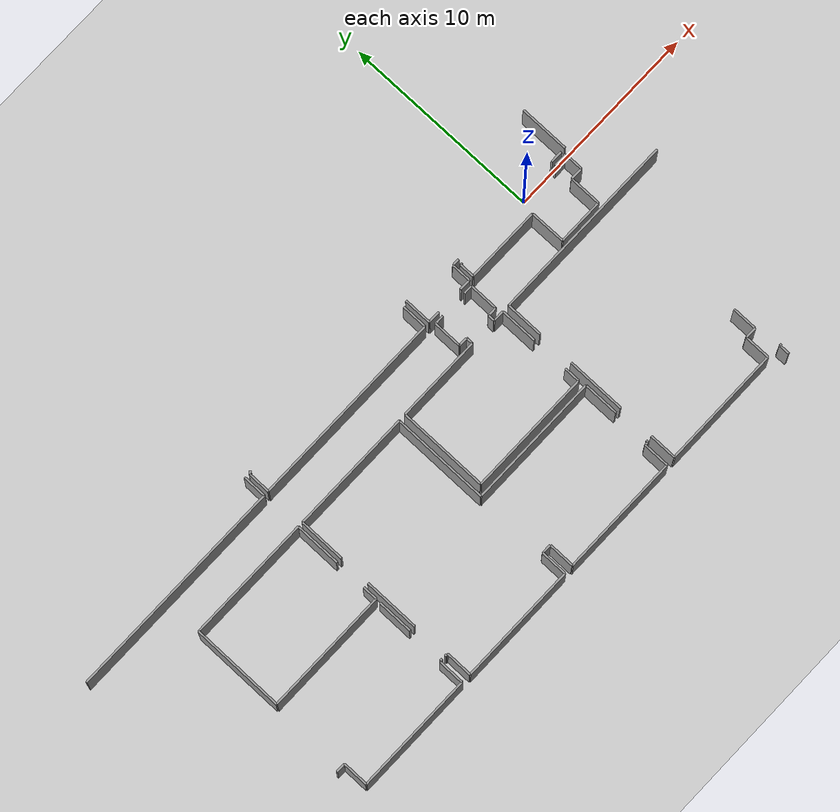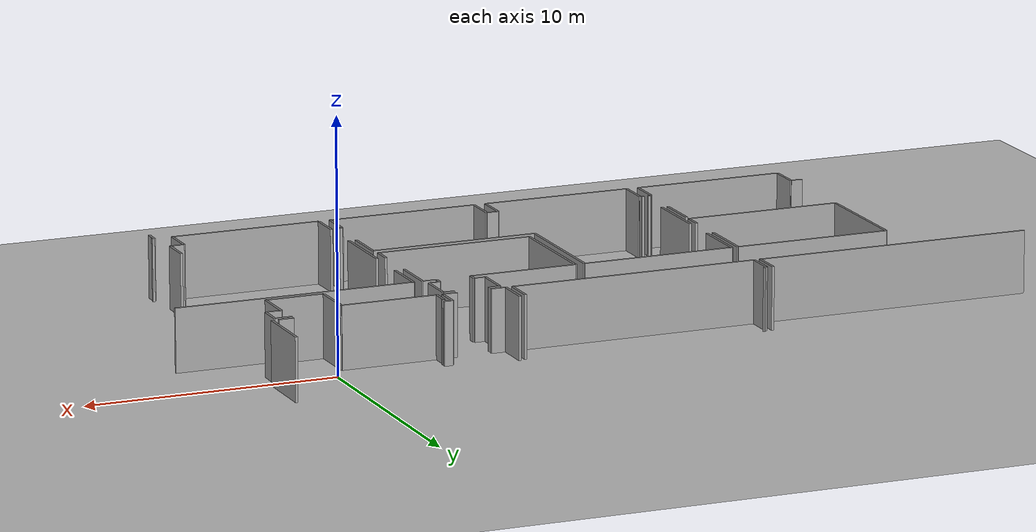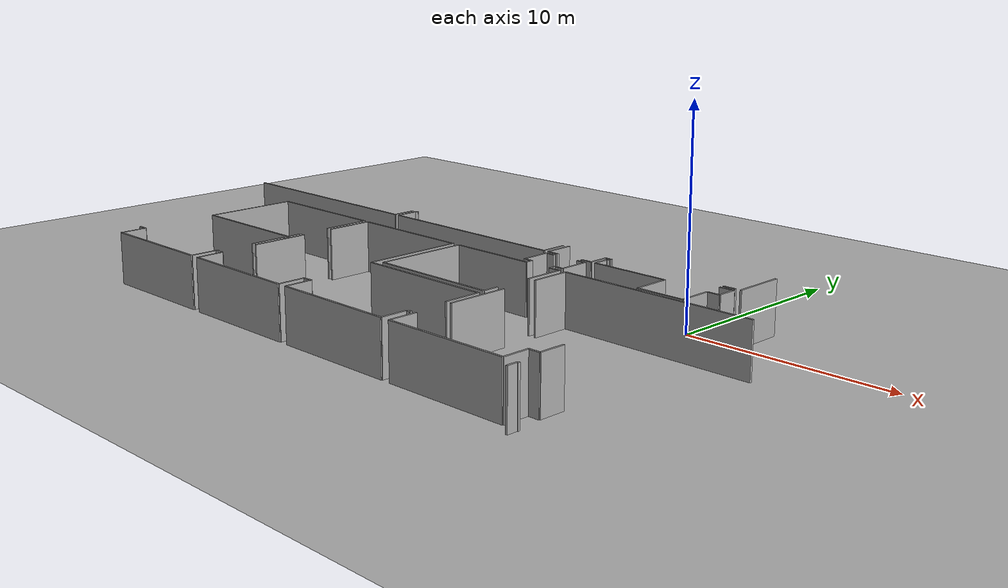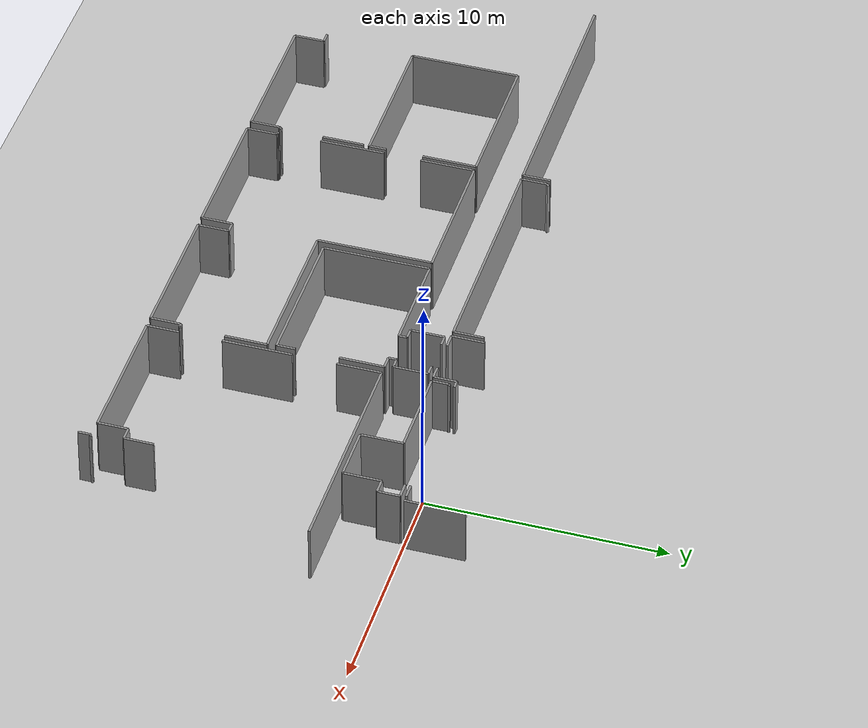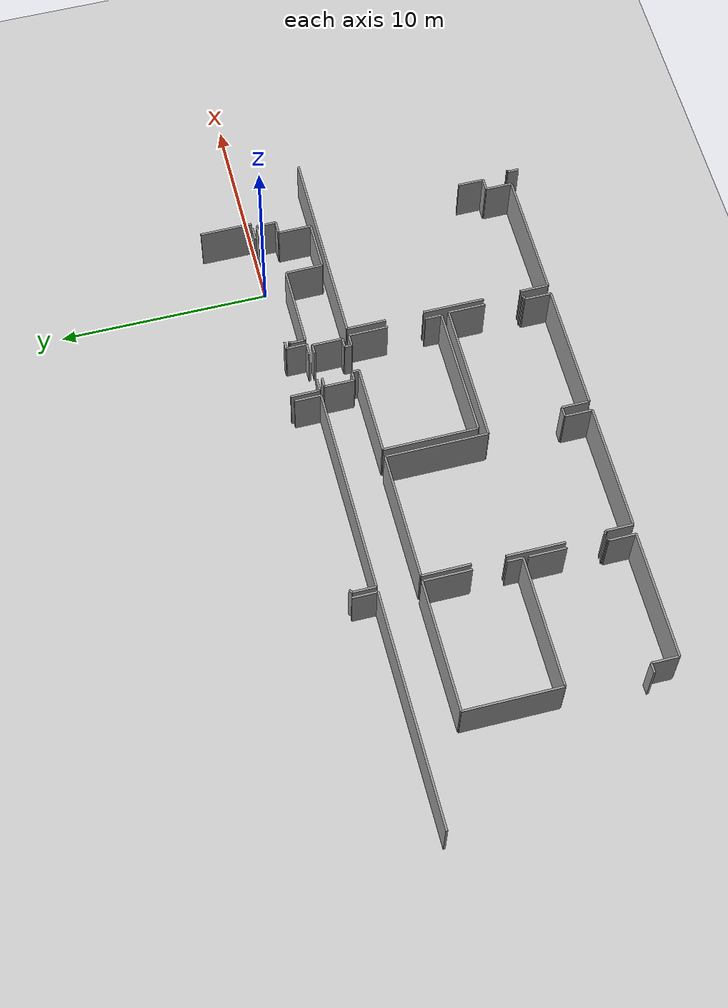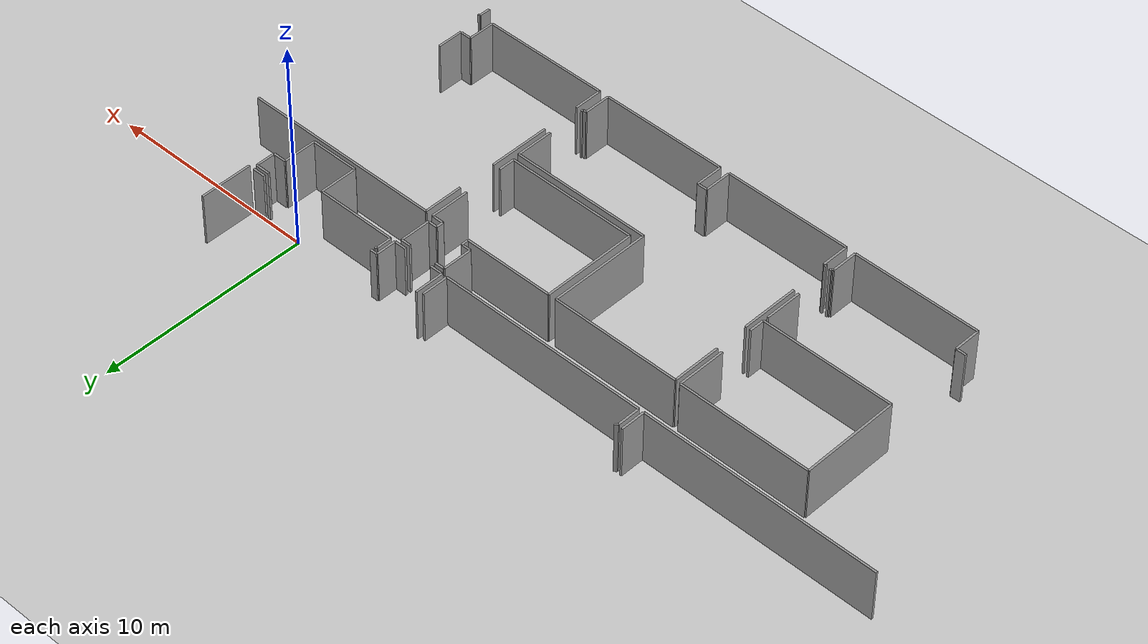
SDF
<sdf version="1.6">
 <world name="default">
  <model name="ground_plane">
   <static>1</static>
   <link name="link">
    <collision name="collision">
     <geometry><plane><normal>0 0 1</normal><size>100 100</size></plane></geometry>
     <surface><friction><ode><mu>100</mu><mu2>50</mu2></ode></friction></surface>
    </collision>
    <visual name="visual">
     <cast_shadows>0</cast_shadows>
     <geometry><plane><normal>0 0 1</normal><size>100 100</size></plane></geometry>
     <material>
      <script><uri>file://media/materials/scripts/gazebo.material</uri><name>Gazebo/Grey</name></script>
     </material>
    </visual>
   </link>
  </model>
  <model name="0510040943_A-40">
   <static>1</static>
   <link name="Wall_24">
    <collision name="Wall_24_Collision">
     <geometry><box><size>0.604226924443 0.1 2.5</size></box></geometry>
     <pose>0.302113462222 0 1.25 0 0 0</pose>
    </collision>
    <visual name="Wall_24_Visual">
     <pose>0.302113462222 0 1.25 0 0 0</pose>
     <geometry><box><size>0.604226924443 0.1 2.5</size></box></geometry>
     <material>
      <script><uri>file://media/materials/scripts/gazebo.material</uri><name>Gazebo/Grey</name></script>
      <ambient>1 1 1 1</ambient>
     </material>
    </visual>
    <pose>58.5133455117 -13.3639062262 0 0 0 3.14159265359</pose>
   </link>
   <link name="Wall_25">
    <collision name="Wall_25_Collision">
     <geometry><box><size>0.345562490486 0.1 2.5</size></box></geometry>
     <pose>0.172781245243 0 1.25 0 0 0</pose>
    </collision>
    <visual name="Wall_25_Visual">
     <pose>0.172781245243 0 1.25 0 0 0</pose>
     <geometry><box><size>0.345562490486 0.1 2.5</size></box></geometry>
     <material>
      <script><uri>file://media/materials/scripts/gazebo.material</uri><name>Gazebo/Grey</name></script>
      <ambient>1 1 1 1</ambient>
     </material>
    </visual>
    <pose>51.9345917694 -13.3639062262 0 0 0 3.14159265359</pose>
   </link>
   <link name="Wall_26">
    <collision name="Wall_26_Collision">
     <geometry><box><size>0.968564469478 0.1 2.5</size></box></geometry>
     <pose>0.484282234739 0 1.25 0 0 0</pose>
    </collision>
    <visual name="Wall_26_Visual">
     <pose>0.484282234739 0 1.25 0 0 0</pose>
     <geometry><box><size>0.968564469478 0.1 2.5</size></box></geometry>
     <material>
      <script><uri>file://media/materials/scripts/gazebo.material</uri><name>Gazebo/Grey</name></script>
      <ambient>1 1 1 1</ambient>
     </material>
    </visual>
    <pose>51.5890292789 -13.3639062262 0 0 0 -1.57079632679</pose>
   </link>
   <link name="Wall_27">
    <collision name="Wall_27_Collision">
     <geometry><box><size>0.570355711169 0.1 2.5</size></box></geometry>
     <pose>0.285177855584 0 1.25 0 0 0</pose>
    </collision>
    <visual name="Wall_27_Visual">
     <pose>0.285177855584 0 1.25 0 0 0</pose>
     <geometry><box><size>0.570355711169 0.1 2.5</size></box></geometry>
     <material>
      <script><uri>file://media/materials/scripts/gazebo.material</uri><name>Gazebo/Grey</name></script>
      <ambient>1 1 1 1</ambient>
     </material>
    </visual>
    <pose>51.5890292789 -14.3324706957 0 0 0 3.14159265359</pose>
   </link>
   <link name="Wall_28">
    <collision name="Wall_28_Collision">
     <geometry><box><size>0.60549550921 0.1 2.5</size></box></geometry>
     <pose>0.302747754605 0 1.25 0 0 0</pose>
    </collision>
    <visual name="Wall_28_Visual">
     <pose>0.302747754605 0 1.25 0 0 0</pose>
     <geometry><box><size>0.60549550921 0.1 2.5</size></box></geometry>
     <material>
      <script><uri>file://media/materials/scripts/gazebo.material</uri><name>Gazebo/Grey</name></script>
      <ambient>1 1 1 1</ambient>
     </material>
    </visual>
    <pose>49.6404830771 -14.3324706957 0 0 0 3.14159265359</pose>
   </link>
   <link name="Wall_29">
    <collision name="Wall_29_Collision">
     <geometry><box><size>1.38275739585 0.1 2.5</size></box></geometry>
     <pose>0.691378697925 0 1.25 0 0 0</pose>
    </collision>
    <visual name="Wall_29_Visual">
     <pose>0.691378697925 0 1.25 0 0 0</pose>
     <geometry><box><size>1.38275739585 0.1 2.5</size></box></geometry>
     <material>
      <script><uri>file://media/materials/scripts/gazebo.material</uri><name>Gazebo/Grey</name></script>
      <ambient>1 1 1 1</ambient>
     </material>
    </visual>
    <pose>49.0349875679 -14.3324706957 0 0 0 1.57079632679</pose>
   </link>
   <link name="Wall_34">
    <collision name="Wall_34_Collision">
     <geometry><box><size>1.17838838991 0.1 2.5</size></box></geometry>
     <pose>0.589194194956 0 1.25 0 0 0</pose>
    </collision>
    <visual name="Wall_34_Visual">
     <pose>0.589194194956 0 1.25 0 0 0</pose>
     <geometry><box><size>1.17838838991 0.1 2.5</size></box></geometry>
     <material>
      <script><uri>file://media/materials/scripts/gazebo.material</uri><name>Gazebo/Grey</name></script>
      <ambient>1 1 1 1</ambient>
     </material>
    </visual>
    <pose>38.5742375806 -13.1614400974 0 0 0 -1.57079632679</pose>
   </link>
   <link name="Wall_35">
    <collision name="Wall_35_Collision">
     <geometry><box><size>11.1474349216 0.1 2.5</size></box></geometry>
     <pose>5.5737174608 0 1.25 0 0 0</pose>
    </collision>
    <visual name="Wall_35_Visual">
     <pose>5.5737174608 0 1.25 0 0 0</pose>
     <geometry><box><size>11.1474349216 0.1 2.5</size></box></geometry>
     <material>
      <script><uri>file://media/materials/scripts/gazebo.material</uri><name>Gazebo/Grey</name></script>
      <ambient>1 1 1 1</ambient>
     </material>
    </visual>
    <pose>38.5742375806 -14.3398284873 0 0 0 3.14159265359</pose>
   </link>
   <link name="Wall_178">
    <collision name="Wall_178_Collision">
     <geometry><box><size>1.77754097529 0.1 2.5</size></box></geometry>
     <pose>0.888770487644 0 1.25 0 0 0</pose>
    </collision>
    <visual name="Wall_178_Visual">
     <pose>0.888770487644 0 1.25 0 0 0</pose>
     <geometry><box><size>1.77754097529 0.1 2.5</size></box></geometry>
     <material>
      <script><uri>file://media/materials/scripts/gazebo.material</uri><name>Gazebo/Grey</name></script>
      <ambient>1 1 1 1</ambient>
     </material>
    </visual>
    <pose>38.5866697113 -21.2040138022 0 0 0 -1.57079632679</pose>
   </link>
   <link name="Wall_179">
    <collision name="Wall_179_Collision">
     <geometry><box><size>0.0942558481758 0.1 2.5</size></box></geometry>
     <pose>0.0471279240879 0 1.25 0 0 0</pose>
    </collision>
    <visual name="Wall_179_Visual">
     <pose>0.0471279240879 0 1.25 0 0 0</pose>
     <geometry><box><size>0.0942558481758 0.1 2.5</size></box></geometry>
     <material>
      <script><uri>file://media/materials/scripts/gazebo.material</uri><name>Gazebo/Grey</name></script>
      <ambient>1 1 1 1</ambient>
     </material>
    </visual>
    <pose>38.5866697113 -24.7724158928 0 0 0 -1.57079632679</pose>
   </link>
   <link name="Wall_180">
    <collision name="Wall_180_Collision">
     <geometry><box><size>0.10250164916 0.1 2.5</size></box></geometry>
     <pose>0.0512508245801 0 1.25 0 0 0</pose>
    </collision>
    <visual name="Wall_180_Visual">
     <pose>0.0512508245801 0 1.25 0 0 0</pose>
     <geometry><box><size>0.10250164916 0.1 2.5</size></box></geometry>
     <material>
      <script><uri>file://media/materials/scripts/gazebo.material</uri><name>Gazebo/Grey</name></script>
      <ambient>1 1 1 1</ambient>
     </material>
    </visual>
    <pose>38.5866697113 -24.866671741 0 0 0 3.14159265359</pose>
   </link>
   <link name="Wall_181">
    <collision name="Wall_181_Collision">
     <geometry><box><size>1.27657685087 0.1 2.5</size></box></geometry>
     <pose>0.638288425433 0 1.25 0 0 0</pose>
    </collision>
    <visual name="Wall_181_Visual">
     <pose>0.638288425433 0 1.25 0 0 0</pose>
     <geometry><box><size>1.27657685087 0.1 2.5</size></box></geometry>
     <material>
      <script><uri>file://media/materials/scripts/gazebo.material</uri><name>Gazebo/Grey</name></script>
      <ambient>1 1 1 1</ambient>
     </material>
    </visual>
    <pose>38.4841680621 -24.866671741 0 0 0 -1.57079632679</pose>
   </link>
   <link name="Wall_182">
    <collision name="Wall_182_Collision">
     <geometry><box><size>6.02679251028 0.1 2.5</size></box></geometry>
     <pose>3.01339625514 0 1.25 0 0 0</pose>
    </collision>
    <visual name="Wall_182_Visual">
     <pose>3.01339625514 0 1.25 0 0 0</pose>
     <geometry><box><size>6.02679251028 0.1 2.5</size></box></geometry>
     <material>
      <script><uri>file://media/materials/scripts/gazebo.material</uri><name>Gazebo/Grey</name></script>
      <ambient>1 1 1 1</ambient>
     </material>
    </visual>
    <pose>38.4841680621 -26.1432485919 0 0 0 3.14159265359</pose>
   </link>
   <link name="Wall_183">
    <collision name="Wall_183_Collision">
     <geometry><box><size>1.28304663318 0.1 2.5</size></box></geometry>
     <pose>0.641523316588 0 1.25 0 0 0</pose>
    </collision>
    <visual name="Wall_183_Visual">
     <pose>0.641523316588 0 1.25 0 0 0</pose>
     <geometry><box><size>1.28304663318 0.1 2.5</size></box></geometry>
     <material>
      <script><uri>file://media/materials/scripts/gazebo.material</uri><name>Gazebo/Grey</name></script>
      <ambient>1 1 1 1</ambient>
     </material>
    </visual>
    <pose>32.4573755518 -26.1432485919 0 0 0 1.57079632679</pose>
   </link>
   <link name="Wall_184">
    <collision name="Wall_184_Collision">
     <geometry><box><size>0.468615212869 0.1 2.5</size></box></geometry>
     <pose>0.234307606434 0 1.25 0 0 0</pose>
    </collision>
    <visual name="Wall_184_Visual">
     <pose>0.234307606434 0 1.25 0 0 0</pose>
     <geometry><box><size>0.468615212869 0.1 2.5</size></box></geometry>
     <material>
      <script><uri>file://media/materials/scripts/gazebo.material</uri><name>Gazebo/Grey</name></script>
      <ambient>1 1 1 1</ambient>
     </material>
    </visual>
    <pose>32.4573755518 -24.8602019587 0 0 0 3.14159265359</pose>
   </link>
   <link name="Wall_187">
    <collision name="Wall_187_Collision">
     <geometry><box><size>1.29408332065 0.1 2.5</size></box></geometry>
     <pose>0.647041660324 0 1.25 0 0 0</pose>
    </collision>
    <visual name="Wall_187_Visual">
     <pose>0.647041660324 0 1.25 0 0 0</pose>
     <geometry><box><size>1.29408332065 0.1 2.5</size></box></geometry>
     <material>
      <script><uri>file://media/materials/scripts/gazebo.material</uri><name>Gazebo/Grey</name></script>
      <ambient>1 1 1 1</ambient>
     </material>
    </visual>
    <pose>38.9595067742 -26.1676054194 0 0 0 1.57079632679</pose>
   </link>
   <link name="Wall_188">
    <collision name="Wall_188_Collision">
     <geometry><box><size>0.105292535647 0.1 2.5</size></box></geometry>
     <pose>0.0526462678236 0 1.25 0 0 0</pose>
    </collision>
    <visual name="Wall_188_Visual">
     <pose>0.0526462678236 0 1.25 0 0 0</pose>
     <geometry><box><size>0.105292535647 0.1 2.5</size></box></geometry>
     <material>
      <script><uri>file://media/materials/scripts/gazebo.material</uri><name>Gazebo/Grey</name></script>
      <ambient>1 1 1 1</ambient>
     </material>
    </visual>
    <pose>38.9595067742 -24.8735220987 0 0 0 3.14159265359</pose>
   </link>
   <link name="Wall_189">
    <collision name="Wall_189_Collision">
     <geometry><box><size>0.0876592073882 0.1 2.5</size></box></geometry>
     <pose>0.0438296036941 0 1.25 0 0 0</pose>
    </collision>
    <visual name="Wall_189_Visual">
     <pose>0.0438296036941 0 1.25 0 0 0</pose>
     <geometry><box><size>0.0876592073882 0.1 2.5</size></box></geometry>
     <material>
      <script><uri>file://media/materials/scripts/gazebo.material</uri><name>Gazebo/Grey</name></script>
      <ambient>1 1 1 1</ambient>
     </material>
    </visual>
    <pose>38.8542142386 -24.8735220987 0 0 0 1.57079632679</pose>
   </link>
   <link name="Wall_190">
    <collision name="Wall_190_Collision">
     <geometry><box><size>2.75156035926 0.1 2.5</size></box></geometry>
     <pose>1.37578017963 0 1.25 0 0 0</pose>
    </collision>
    <visual name="Wall_190_Visual">
     <pose>1.37578017963 0 1.25 0 0 0</pose>
     <geometry><box><size>2.75156035926 0.1 2.5</size></box></geometry>
     <material>
      <script><uri>file://media/materials/scripts/gazebo.material</uri><name>Gazebo/Grey</name></script>
      <ambient>1 1 1 1</ambient>
     </material>
    </visual>
    <pose>38.8542142386 -22.997919521 0 0 0 1.57079632679</pose>
   </link>
   <link name="Wall_191">
    <collision name="Wall_191_Collision">
     <geometry><box><size>2.30336936114 0.1 2.5</size></box></geometry>
     <pose>1.15168468057 0 1.25 0 0 0</pose>
    </collision>
    <visual name="Wall_191_Visual">
     <pose>1.15168468057 0 1.25 0 0 0</pose>
     <geometry><box><size>2.30336936114 0.1 2.5</size></box></geometry>
     <material>
      <script><uri>file://media/materials/scripts/gazebo.material</uri><name>Gazebo/Grey</name></script>
      <ambient>1 1 1 1</ambient>
     </material>
    </visual>
    <pose>38.8542142386 -18.6620236464 0 0 0 1.57079632679</pose>
   </link>
   <link name="Wall_192">
    <collision name="Wall_192_Collision">
     <geometry><box><size>6.10874308621 0.1 2.5</size></box></geometry>
     <pose>3.05437154311 0 1.25 0 0 0</pose>
    </collision>
    <visual name="Wall_192_Visual">
     <pose>3.05437154311 0 1.25 0 0 0</pose>
     <geometry><box><size>6.10874308621 0.1 2.5</size></box></geometry>
     <material>
      <script><uri>file://media/materials/scripts/gazebo.material</uri><name>Gazebo/Grey</name></script>
      <ambient>1 1 1 1</ambient>
     </material>
    </visual>
    <pose>38.8542142386 -16.3586542853 0 0 0 0.0</pose>
   </link>
   <link name="Wall_193">
    <collision name="Wall_193_Collision">
     <geometry><box><size>4.85423961029 0.1 2.5</size></box></geometry>
     <pose>2.42711980515 0 1.25 0 0 0</pose>
    </collision>
    <visual name="Wall_193_Visual">
     <pose>2.42711980515 0 1.25 0 0 0</pose>
     <geometry><box><size>4.85423961029 0.1 2.5</size></box></geometry>
     <material>
      <script><uri>file://media/materials/scripts/gazebo.material</uri><name>Gazebo/Grey</name></script>
      <ambient>1 1 1 1</ambient>
     </material>
    </visual>
    <pose>44.9629573248 -16.3586542853 0 0 0 -1.57079632679</pose>
   </link>
   <link name="Wall_194">
    <collision name="Wall_194_Collision">
     <geometry><box><size>6.68962805095 0.1 2.5</size></box></geometry>
     <pose>3.34481402547 0 1.25 0 0 0</pose>
    </collision>
    <visual name="Wall_194_Visual">
     <pose>3.34481402547 0 1.25 0 0 0</pose>
     <geometry><box><size>6.68962805095 0.1 2.5</size></box></geometry>
     <material>
      <script><uri>file://media/materials/scripts/gazebo.material</uri><name>Gazebo/Grey</name></script>
      <ambient>1 1 1 1</ambient>
     </material>
    </visual>
    <pose>44.9629573248 -21.2128938956 0 0 0 0.0</pose>
   </link>
   <link name="Wall_195">
    <collision name="Wall_195_Collision">
     <geometry><box><size>1.77703354138 0.1 2.5</size></box></geometry>
     <pose>0.888516770691 0 1.25 0 0 0</pose>
    </collision>
    <visual name="Wall_195_Visual">
     <pose>0.888516770691 0 1.25 0 0 0</pose>
     <geometry><box><size>1.77703354138 0.1 2.5</size></box></geometry>
     <material>
      <script><uri>file://media/materials/scripts/gazebo.material</uri><name>Gazebo/Grey</name></script>
      <ambient>1 1 1 1</ambient>
     </material>
    </visual>
    <pose>51.6525853758 -21.2128938956 0 0 0 -1.57079632679</pose>
   </link>
   <link name="Wall_196">
    <collision name="Wall_196_Collision">
     <geometry><box><size>0.0986958948597 0.1 2.5</size></box></geometry>
     <pose>0.0493479474298 0 1.25 0 0 0</pose>
    </collision>
    <visual name="Wall_196_Visual">
     <pose>0.0493479474298 0 1.25 0 0 0</pose>
     <geometry><box><size>0.0986958948597 0.1 2.5</size></box></geometry>
     <material>
      <script><uri>file://media/materials/scripts/gazebo.material</uri><name>Gazebo/Grey</name></script>
      <ambient>1 1 1 1</ambient>
     </material>
    </visual>
    <pose>51.6525853758 -24.7858628914 0 0 0 -1.57079632679</pose>
   </link>
   <link name="Wall_197">
    <collision name="Wall_197_Collision">
     <geometry><box><size>0.178743593647 0.1 2.5</size></box></geometry>
     <pose>0.0893717968235 0 1.25 0 0 0</pose>
    </collision>
    <visual name="Wall_197_Visual">
     <pose>0.0893717968235 0 1.25 0 0 0</pose>
     <geometry><box><size>0.178743593647 0.1 2.5</size></box></geometry>
     <material>
      <script><uri>file://media/materials/scripts/gazebo.material</uri><name>Gazebo/Grey</name></script>
      <ambient>1 1 1 1</ambient>
     </material>
    </visual>
    <pose>51.6525853758 -24.8845587862 0 0 0 3.14159265359</pose>
   </link>
   <link name="Wall_198">
    <collision name="Wall_198_Collision">
     <geometry><box><size>1.28038260517 0.1 2.5</size></box></geometry>
     <pose>0.640191302583 0 1.25 0 0 0</pose>
    </collision>
    <visual name="Wall_198_Visual">
     <pose>0.640191302583 0 1.25 0 0 0</pose>
     <geometry><box><size>1.28038260517 0.1 2.5</size></box></geometry>
     <material>
      <script><uri>file://media/materials/scripts/gazebo.material</uri><name>Gazebo/Grey</name></script>
      <ambient>1 1 1 1</ambient>
     </material>
    </visual>
    <pose>51.4738417821 -24.8845587862 0 0 0 -1.57079632679</pose>
   </link>
   <link name="Wall_199">
    <collision name="Wall_199_Collision">
     <geometry><box><size>6.0266656518 0.1 2.5</size></box></geometry>
     <pose>3.0133328259 0 1.25 0 0 0</pose>
    </collision>
    <visual name="Wall_199_Visual">
     <pose>3.0133328259 0 1.25 0 0 0</pose>
     <geometry><box><size>6.0266656518 0.1 2.5</size></box></geometry>
     <material>
      <script><uri>file://media/materials/scripts/gazebo.material</uri><name>Gazebo/Grey</name></script>
      <ambient>1 1 1 1</ambient>
     </material>
    </visual>
    <pose>51.4738417821 -26.1649413914 0 0 0 3.14159265359</pose>
   </link>
   <link name="Wall_200">
    <collision name="Wall_200_Collision">
     <geometry><box><size>1.30550058355 0.1 2.5</size></box></geometry>
     <pose>0.652750291774 0 1.25 0 0 0</pose>
    </collision>
    <visual name="Wall_200_Visual">
     <pose>0.652750291774 0 1.25 0 0 0</pose>
     <geometry><box><size>1.30550058355 0.1 2.5</size></box></geometry>
     <material>
      <script><uri>file://media/materials/scripts/gazebo.material</uri><name>Gazebo/Grey</name></script>
      <ambient>1 1 1 1</ambient>
     </material>
    </visual>
    <pose>45.4471761303 -26.1649413914 0 0 0 1.57079632679</pose>
   </link>
   <link name="Wall_201">
    <collision name="Wall_201_Collision">
     <geometry><box><size>0.471406099356 0.1 2.5</size></box></geometry>
     <pose>0.235703049678 0 1.25 0 0 0</pose>
    </collision>
    <visual name="Wall_201_Visual">
     <pose>0.235703049678 0 1.25 0 0 0</pose>
     <geometry><box><size>0.471406099356 0.1 2.5</size></box></geometry>
     <material>
      <script><uri>file://media/materials/scripts/gazebo.material</uri><name>Gazebo/Grey</name></script>
      <ambient>1 1 1 1</ambient>
     </material>
    </visual>
    <pose>45.4471761303 -24.8594408078 0 0 0 3.14159265359</pose>
   </link>
   <link name="Wall_202">
    <collision name="Wall_202_Collision">
     <geometry><box><size>1.30550058355 0.1 2.5</size></box></geometry>
     <pose>0.652750291774 0 1.25 0 0 0</pose>
    </collision>
    <visual name="Wall_202_Visual">
     <pose>0.652750291774 0 1.25 0 0 0</pose>
     <geometry><box><size>1.30550058355 0.1 2.5</size></box></geometry>
     <material>
      <script><uri>file://media/materials/scripts/gazebo.material</uri><name>Gazebo/Grey</name></script>
      <ambient>1 1 1 1</ambient>
     </material>
    </visual>
    <pose>44.975770031 -24.8594408078 0 0 0 -1.57079632679</pose>
   </link>
   <link name="Wall_203">
    <collision name="Wall_203_Collision">
     <geometry><box><size>6.01626384653 0.1 2.5</size></box></geometry>
     <pose>3.00813192327 0 1.25 0 0 0</pose>
    </collision>
    <visual name="Wall_203_Visual">
     <pose>3.00813192327 0 1.25 0 0 0</pose>
     <geometry><box><size>6.01626384653 0.1 2.5</size></box></geometry>
     <material>
      <script><uri>file://media/materials/scripts/gazebo.material</uri><name>Gazebo/Grey</name></script>
      <ambient>1 1 1 1</ambient>
     </material>
    </visual>
    <pose>44.975770031 -26.1649413914 0 0 0 -3.14114984919</pose>
   </link>
   <link name="Wall_204">
    <collision name="Wall_204_Collision">
     <geometry><box><size>1.36207946415 0.1 2.5</size></box></geometry>
     <pose>0.681039732075 0 1.25 0 0 0</pose>
    </collision>
    <visual name="Wall_204_Visual">
     <pose>0.681039732075 0 1.25 0 0 0</pose>
     <geometry><box><size>1.36207946415 0.1 2.5</size></box></geometry>
     <material>
      <script><uri>file://media/materials/scripts/gazebo.material</uri><name>Gazebo/Grey</name></script>
      <ambient>1 1 1 1</ambient>
     </material>
    </visual>
    <pose>51.9425838535 -26.1654488253 0 0 0 1.57079632679</pose>
   </link>
   <link name="Wall_205">
    <collision name="Wall_205_Collision">
     <geometry><box><size>2.93246054701 0.1 2.5</size></box></geometry>
     <pose>1.46623027351 0 1.25 0 0 0</pose>
    </collision>
    <visual name="Wall_205_Visual">
     <pose>1.46623027351 0 1.25 0 0 0</pose>
     <geometry><box><size>2.93246054701 0.1 2.5</size></box></geometry>
     <material>
      <script><uri>file://media/materials/scripts/gazebo.material</uri><name>Gazebo/Grey</name></script>
      <ambient>1 1 1 1</ambient>
     </material>
    </visual>
    <pose>51.9425838535 -22.997919521 0 0 0 1.57079632679</pose>
   </link>
   <link name="Wall_206">
    <collision name="Wall_206_Collision">
     <geometry><box><size>1.87141624803 0.1 2.5</size></box></geometry>
     <pose>0.935708124017 0 1.25 0 0 0</pose>
    </collision>
    <visual name="Wall_206_Visual">
     <pose>0.935708124017 0 1.25 0 0 0</pose>
     <geometry><box><size>1.87141624803 0.1 2.5</size></box></geometry>
     <material>
      <script><uri>file://media/materials/scripts/gazebo.material</uri><name>Gazebo/Grey</name></script>
      <ambient>1 1 1 1</ambient>
     </material>
    </visual>
    <pose>51.9425838535 -18.2300705333 0 0 0 1.57079632679</pose>
   </link>
   <link name="Wall_207">
    <collision name="Wall_207_Collision">
     <geometry><box><size>9.5381082864 0.1 2.5</size></box></geometry>
     <pose>4.7690541432 0 1.25 0 0 0</pose>
    </collision>
    <visual name="Wall_207_Visual">
     <pose>4.7690541432 0 1.25 0 0 0</pose>
     <geometry><box><size>9.5381082864 0.1 2.5</size></box></geometry>
     <material>
      <script><uri>file://media/materials/scripts/gazebo.material</uri><name>Gazebo/Grey</name></script>
      <ambient>1 1 1 1</ambient>
     </material>
    </visual>
    <pose>51.9425838535 -16.3586542853 0 0 0 0.0</pose>
   </link>
   <link name="Wall_212">
    <collision name="Wall_212_Collision">
     <geometry><box><size>1.23585527985 0.1 2.5</size></box></geometry>
     <pose>0.617927639925 0 1.25 0 0 0</pose>
    </collision>
    <visual name="Wall_212_Visual">
     <pose>0.617927639925 0 1.25 0 0 0</pose>
     <geometry><box><size>1.23585527985 0.1 2.5</size></box></geometry>
     <material>
      <script><uri>file://media/materials/scripts/gazebo.material</uri><name>Gazebo/Grey</name></script>
      <ambient>1 1 1 1</ambient>
     </material>
    </visual>
    <pose>58.5255239255 -23.645151469 0 0 0 -1.57079632679</pose>
   </link>
   <link name="Wall_213">
    <collision name="Wall_213_Collision">
     <geometry><box><size>0.552595524433 0.1 2.5</size></box></geometry>
     <pose>0.276297762216 0 1.25 0 0 0</pose>
    </collision>
    <visual name="Wall_213_Visual">
     <pose>0.276297762216 0 1.25 0 0 0</pose>
     <geometry><box><size>0.552595524433 0.1 2.5</size></box></geometry>
     <material>
      <script><uri>file://media/materials/scripts/gazebo.material</uri><name>Gazebo/Grey</name></script>
      <ambient>1 1 1 1</ambient>
     </material>
    </visual>
    <pose>58.5255239255 -24.8810067489 0 0 0 3.14159265359</pose>
   </link>
   <link name="Wall_214">
    <collision name="Wall_214_Collision">
     <geometry><box><size>1.26845790836 0.1 2.5</size></box></geometry>
     <pose>0.634228954179 0 1.25 0 0 0</pose>
    </collision>
    <visual name="Wall_214_Visual">
     <pose>0.634228954179 0 1.25 0 0 0</pose>
     <geometry><box><size>1.26845790836 0.1 2.5</size></box></geometry>
     <material>
      <script><uri>file://media/materials/scripts/gazebo.material</uri><name>Gazebo/Grey</name></script>
      <ambient>1 1 1 1</ambient>
     </material>
    </visual>
    <pose>57.9729284011 -24.8810067489 0 0 0 -1.57079632679</pose>
   </link>
   <link name="Wall_215">
    <collision name="Wall_215_Collision">
     <geometry><box><size>6.03036573158 0.1 2.5</size></box></geometry>
     <pose>3.01518286579 0 1.25 0 0 0</pose>
    </collision>
    <visual name="Wall_215_Visual">
     <pose>3.01518286579 0 1.25 0 0 0</pose>
     <geometry><box><size>6.03036573158 0.1 2.5</size></box></geometry>
     <material>
      <script><uri>file://media/materials/scripts/gazebo.material</uri><name>Gazebo/Grey</name></script>
      <ambient>1 1 1 1</ambient>
     </material>
    </visual>
    <pose>57.9729284011 -26.1494646572 0 0 0 -3.13894203711</pose>
   </link>
   <link name="Wall_216">
    <collision name="Wall_216_Collision">
     <geometry><box><size>4.62069315472 0.1 2.5</size></box></geometry>
     <pose>2.31034657736 0 1.25 0 0 0</pose>
    </collision>
    <visual name="Wall_216_Visual">
     <pose>2.31034657736 0 1.25 0 0 0</pose>
     <geometry><box><size>4.62069315472 0.1 2.5</size></box></geometry>
     <material>
      <script><uri>file://media/materials/scripts/gazebo.material</uri><name>Gazebo/Grey</name></script>
      <ambient>1 1 1 1</ambient>
     </material>
    </visual>
    <pose>32.3386360177 -20.968691328 0 0 0 1.57079632679</pose>
   </link>
   <link name="Wall_217">
    <collision name="Wall_217_Collision">
     <geometry><box><size>6.25805551327 0.1 2.5</size></box></geometry>
     <pose>3.12902775663 0 1.25 0 0 0</pose>
    </collision>
    <visual name="Wall_217_Visual">
     <pose>3.12902775663 0 1.25 0 0 0</pose>
     <geometry><box><size>6.25805551327 0.1 2.5</size></box></geometry>
     <material>
      <script><uri>file://media/materials/scripts/gazebo.material</uri><name>Gazebo/Grey</name></script>
      <ambient>1 1 1 1</ambient>
     </material>
    </visual>
    <pose>32.3386360177 -16.3479981732 0 0 0 0.0</pose>
   </link>
   <link name="Wall_218">
    <collision name="Wall_218_Collision">
     <geometry><box><size>2.29588471102 0.1 2.5</size></box></geometry>
     <pose>1.14794235551 0 1.25 0 0 0</pose>
    </collision>
    <visual name="Wall_218_Visual">
     <pose>1.14794235551 0 1.25 0 0 0</pose>
     <geometry><box><size>2.29588471102 0.1 2.5</size></box></geometry>
     <material>
      <script><uri>file://media/materials/scripts/gazebo.material</uri><name>Gazebo/Grey</name></script>
      <ambient>1 1 1 1</ambient>
     </material>
    </visual>
    <pose>38.5966915309 -16.3479981732 0 0 0 -1.57079632679</pose>
   </link>
   <link name="Wall_219">
    <collision name="Wall_219_Collision">
     <geometry><box><size>0.739204343634 0.1 2.5</size></box></geometry>
     <pose>0.369602171817 0 1.25 0 0 0</pose>
    </collision>
    <visual name="Wall_219_Visual">
     <pose>0.369602171817 0 1.25 0 0 0</pose>
     <geometry><box><size>0.739204343634 0.1 2.5</size></box></geometry>
     <material>
      <script><uri>file://media/materials/scripts/gazebo.material</uri><name>Gazebo/Grey</name></script>
      <ambient>1 1 1 1</ambient>
     </material>
    </visual>
    <pose>38.5966915309 -20.2263155224 0 0 0 -1.57079632679</pose>
   </link>
   <link name="Wall_220">
    <collision name="Wall_220_Collision">
     <geometry><box><size>6.25805631689 0.1 2.5</size></box></geometry>
     <pose>3.12902815844 0 1.25 0 0 0</pose>
    </collision>
    <visual name="Wall_220_Visual">
     <pose>3.12902815844 0 1.25 0 0 0</pose>
     <geometry><box><size>6.25805631689 0.1 2.5</size></box></geometry>
     <material>
      <script><uri>file://media/materials/scripts/gazebo.material</uri><name>Gazebo/Grey</name></script>
      <ambient>1 1 1 1</ambient>
     </material>
    </visual>
    <pose>38.5966915309 -20.965519866 0 0 0 -3.14108587291</pose>
   </link>
   <link name="Wall_221">
    <collision name="Wall_221_Collision">
     <geometry><box><size>6.23166895012 0.1 2.5</size></box></geometry>
     <pose>3.11583447506 0 1.25 0 0 0</pose>
    </collision>
    <visual name="Wall_221_Visual">
     <pose>3.11583447506 0 1.25 0 0 0</pose>
     <geometry><box><size>6.23166895012 0.1 2.5</size></box></geometry>
     <material>
      <script><uri>file://media/materials/scripts/gazebo.material</uri><name>Gazebo/Grey</name></script>
      <ambient>1 1 1 1</ambient>
     </material>
    </visual>
    <pose>45.3444207642 -20.846272898 0 0 0 0.0</pose>
   </link>
   <link name="Wall_222">
    <collision name="Wall_222_Collision">
     <geometry><box><size>0.781194499416 0.1 2.5</size></box></geometry>
     <pose>0.390597249708 0 1.25 0 0 0</pose>
    </collision>
    <visual name="Wall_222_Visual">
     <pose>0.390597249708 0 1.25 0 0 0</pose>
     <geometry><box><size>0.781194499416 0.1 2.5</size></box></geometry>
     <material>
      <script><uri>file://media/materials/scripts/gazebo.material</uri><name>Gazebo/Grey</name></script>
      <ambient>1 1 1 1</ambient>
     </material>
    </visual>
    <pose>51.5760897143 -20.846272898 0 0 0 1.57079632679</pose>
   </link>
   <link name="Wall_223">
    <collision name="Wall_223_Collision">
     <geometry><box><size>1.87572943624 0.1 2.5</size></box></geometry>
     <pose>0.93786471812 0 1.25 0 0 0</pose>
    </collision>
    <visual name="Wall_223_Visual">
     <pose>0.93786471812 0 1.25 0 0 0</pose>
     <geometry><box><size>1.87572943624 0.1 2.5</size></box></geometry>
     <material>
      <script><uri>file://media/materials/scripts/gazebo.material</uri><name>Gazebo/Grey</name></script>
      <ambient>1 1 1 1</ambient>
     </material>
    </visual>
    <pose>51.5760897143 -18.2300705333 0 0 0 1.57079632679</pose>
   </link>
   <link name="Wall_224">
    <collision name="Wall_224_Collision">
     <geometry><box><size>0.560714466941 0.1 2.5</size></box></geometry>
     <pose>0.28035723347 0 1.25 0 0 0</pose>
    </collision>
    <visual name="Wall_224_Visual">
     <pose>0.28035723347 0 1.25 0 0 0</pose>
     <geometry><box><size>0.560714466941 0.1 2.5</size></box></geometry>
     <material>
      <script><uri>file://media/materials/scripts/gazebo.material</uri><name>Gazebo/Grey</name></script>
      <ambient>1 1 1 1</ambient>
     </material>
    </visual>
    <pose>51.5760897143 -16.3543410971 0 0 0 3.14159265359</pose>
   </link>
   <link name="Wall_225">
    <collision name="Wall_225_Collision">
     <geometry><box><size>0.334272086061 0.1 2.5</size></box></geometry>
     <pose>0.16713604303 0 1.25 0 0 0</pose>
    </collision>
    <visual name="Wall_225_Visual">
     <pose>0.16713604303 0 1.25 0 0 0</pose>
     <geometry><box><size>0.334272086061 0.1 2.5</size></box></geometry>
     <material>
      <script><uri>file://media/materials/scripts/gazebo.material</uri><name>Gazebo/Grey</name></script>
      <ambient>1 1 1 1</ambient>
     </material>
    </visual>
    <pose>51.0153752474 -16.3543410971 0 0 0 1.57079632679</pose>
   </link>
   <link name="Wall_226">
    <collision name="Wall_226_Collision">
     <geometry><box><size>0.447810422692 0.1 2.5</size></box></geometry>
     <pose>0.223905211346 0 1.25 0 0 0</pose>
    </collision>
    <visual name="Wall_226_Visual">
     <pose>0.223905211346 0 1.25 0 0 0</pose>
     <geometry><box><size>0.447810422692 0.1 2.5</size></box></geometry>
     <material>
      <script><uri>file://media/materials/scripts/gazebo.material</uri><name>Gazebo/Grey</name></script>
      <ambient>1 1 1 1</ambient>
     </material>
    </visual>
    <pose>51.0153752474 -16.020069011 0 0 0 0.0</pose>
   </link>
   <link name="Wall_227">
    <collision name="Wall_227_Collision">
     <geometry><box><size>1.44035114426 0.1 2.5</size></box></geometry>
     <pose>0.720175572132 0 1.25 0 0 0</pose>
    </collision>
    <visual name="Wall_227_Visual">
     <pose>0.720175572132 0 1.25 0 0 0</pose>
     <geometry><box><size>1.44035114426 0.1 2.5</size></box></geometry>
     <material>
      <script><uri>file://media/materials/scripts/gazebo.material</uri><name>Gazebo/Grey</name></script>
      <ambient>1 1 1 1</ambient>
     </material>
    </visual>
    <pose>51.4631856701 -16.020069011 0 0 0 1.57079632679</pose>
   </link>
   <link name="Wall_228">
    <collision name="Wall_228_Collision">
     <geometry><box><size>0.451996752423 0.1 2.5</size></box></geometry>
     <pose>0.225998376211 0 1.25 0 0 0</pose>
    </collision>
    <visual name="Wall_228_Visual">
     <pose>0.225998376211 0 1.25 0 0 0</pose>
     <geometry><box><size>0.451996752423 0.1 2.5</size></box></geometry>
     <material>
      <script><uri>file://media/materials/scripts/gazebo.material</uri><name>Gazebo/Grey</name></script>
      <ambient>1 1 1 1</ambient>
     </material>
    </visual>
    <pose>51.4631856701 -14.5797178667 0 0 0 3.14159265359</pose>
   </link>
   <link name="Wall_229">
    <collision name="Wall_229_Collision">
     <geometry><box><size>0.460369411884 0.1 2.5</size></box></geometry>
     <pose>0.230184705942 0 1.25 0 0 0</pose>
    </collision>
    <visual name="Wall_229_Visual">
     <pose>0.230184705942 0 1.25 0 0 0</pose>
     <geometry><box><size>0.460369411884 0.1 2.5</size></box></geometry>
     <material>
      <script><uri>file://media/materials/scripts/gazebo.material</uri><name>Gazebo/Grey</name></script>
      <ambient>1 1 1 1</ambient>
     </material>
    </visual>
    <pose>49.6341401532 -14.5797178667 0 0 0 3.14159265359</pose>
   </link>
   <link name="Wall_230">
    <collision name="Wall_230_Collision">
     <geometry><box><size>1.42132237276 0.1 2.5</size></box></geometry>
     <pose>0.71066118638 0 1.25 0 0 0</pose>
    </collision>
    <visual name="Wall_230_Visual">
     <pose>0.71066118638 0 1.25 0 0 0</pose>
     <geometry><box><size>1.42132237276 0.1 2.5</size></box></geometry>
     <material>
      <script><uri>file://media/materials/scripts/gazebo.material</uri><name>Gazebo/Grey</name></script>
      <ambient>1 1 1 1</ambient>
     </material>
    </visual>
    <pose>49.1737707414 -14.5797178667 0 0 0 -1.57079632679</pose>
   </link>
   <link name="Wall_231">
    <collision name="Wall_231_Collision">
     <geometry><box><size>0.45402648805 0.1 2.5</size></box></geometry>
     <pose>0.227013244025 0 1.25 0 0 0</pose>
    </collision>
    <visual name="Wall_231_Visual">
     <pose>0.227013244025 0 1.25 0 0 0</pose>
     <geometry><box><size>0.45402648805 0.1 2.5</size></box></geometry>
     <material>
      <script><uri>file://media/materials/scripts/gazebo.material</uri><name>Gazebo/Grey</name></script>
      <ambient>1 1 1 1</ambient>
     </material>
    </visual>
    <pose>49.1737707414 -16.0010402395 0 0 0 0.0</pose>
   </link>
   <link name="Wall_232">
    <collision name="Wall_232_Collision">
     <geometry><box><size>0.346957933729 0.1 2.5</size></box></geometry>
     <pose>0.173478966865 0 1.25 0 0 0</pose>
    </collision>
    <visual name="Wall_232_Visual">
     <pose>0.173478966865 0 1.25 0 0 0</pose>
     <geometry><box><size>0.346957933729 0.1 2.5</size></box></geometry>
     <material>
      <script><uri>file://media/materials/scripts/gazebo.material</uri><name>Gazebo/Grey</name></script>
      <ambient>1 1 1 1</ambient>
     </material>
    </visual>
    <pose>49.6277972294 -16.0010402395 0 0 0 -1.57079632679</pose>
   </link>
   <link name="Wall_233">
    <collision name="Wall_233_Collision">
     <geometry><box><size>4.28883137971 0.1 2.5</size></box></geometry>
     <pose>2.14441568986 0 1.25 0 0 0</pose>
    </collision>
    <visual name="Wall_233_Visual">
     <pose>2.14441568986 0 1.25 0 0 0</pose>
     <geometry><box><size>4.28883137971 0.1 2.5</size></box></geometry>
     <material>
      <script><uri>file://media/materials/scripts/gazebo.material</uri><name>Gazebo/Grey</name></script>
      <ambient>1 1 1 1</ambient>
     </material>
    </visual>
    <pose>49.6277972294 -16.3479981732 0 0 0 3.14159265359</pose>
   </link>
   <link name="Wall_234">
    <collision name="Wall_234_Collision">
     <geometry><box><size>4.49827803222 0.1 2.5</size></box></geometry>
     <pose>2.24913901611 0 1.25 0 0 0</pose>
    </collision>
    <visual name="Wall_234_Visual">
     <pose>2.24913901611 0 1.25 0 0 0</pose>
     <geometry><box><size>4.49827803222 0.1 2.5</size></box></geometry>
     <material>
      <script><uri>file://media/materials/scripts/gazebo.material</uri><name>Gazebo/Grey</name></script>
      <ambient>1 1 1 1</ambient>
     </material>
    </visual>
    <pose>45.3389658497 -16.3479981732 0 0 0 -1.56958365924</pose>
   </link>
   <link name="Wall_276">
    <collision name="Wall_276_Collision">
     <geometry><box><size>1.08768457908 0.1 2.5</size></box></geometry>
     <pose>0.543842289542 0 1.25 0 0 0</pose>
    </collision>
    <visual name="Wall_276_Visual">
     <pose>0.543842289542 0 1.25 0 0 0</pose>
     <geometry><box><size>1.08768457908 0.1 2.5</size></box></geometry>
     <material>
      <script><uri>file://media/materials/scripts/gazebo.material</uri><name>Gazebo/Grey</name></script>
      <ambient>1 1 1 1</ambient>
     </material>
    </visual>
    <pose>38.8241487796 -14.3347541483 0 0 0 1.57079632679</pose>
   </link>
   <link name="Wall_277">
    <collision name="Wall_277_Collision">
     <geometry><box><size>0.165056967533 0.1 2.5</size></box></geometry>
     <pose>0.0825284837664 0 1.25 0 0 0</pose>
    </collision>
    <visual name="Wall_277_Visual">
     <pose>0.0825284837664 0 1.25 0 0 0</pose>
     <geometry><box><size>0.165056967533 0.1 2.5</size></box></geometry>
     <material>
      <script><uri>file://media/materials/scripts/gazebo.material</uri><name>Gazebo/Grey</name></script>
      <ambient>1 1 1 1</ambient>
     </material>
    </visual>
    <pose>38.8241487796 -13.2470695692 0 0 0 0.719046903674</pose>
   </link>
   <link name="Wall_281">
    <collision name="Wall_281_Collision">
     <geometry><box><size>1.27124879484 0.1 2.5</size></box></geometry>
     <pose>0.635624397422 0 1.25 0 0 0</pose>
    </collision>
    <visual name="Wall_281_Visual">
     <pose>0.635624397422 0 1.25 0 0 0</pose>
     <geometry><box><size>1.27124879484 0.1 2.5</size></box></geometry>
     <material>
      <script><uri>file://media/materials/scripts/gazebo.material</uri><name>Gazebo/Grey</name></script>
      <ambient>1 1 1 1</ambient>
     </material>
    </visual>
    <pose>48.7685847668 -13.0584310144 0 0 0 -1.57079632679</pose>
   </link>
   <link name="Wall_282">
    <collision name="Wall_282_Collision">
     <geometry><box><size>9.94443728185 0.1 2.5</size></box></geometry>
     <pose>4.97221864093 0 1.25 0 0 0</pose>
    </collision>
    <visual name="Wall_282_Visual">
     <pose>4.97221864093 0 1.25 0 0 0</pose>
     <geometry><box><size>9.94443728185 0.1 2.5</size></box></geometry>
     <material>
      <script><uri>file://media/materials/scripts/gazebo.material</uri><name>Gazebo/Grey</name></script>
      <ambient>1 1 1 1</ambient>
     </material>
    </visual>
    <pose>48.7685847668 -14.3296798092 0 0 0 -3.14108238447</pose>
   </link>
   <link name="Wall_283">
    <collision name="Wall_283_Collision">
     <geometry><box><size>2.30222763485 0.1 2.5</size></box></geometry>
     <pose>1.15111381743 0 1.25 0 0 0</pose>
    </collision>
    <visual name="Wall_283_Visual">
     <pose>1.15111381743 0 1.25 0 0 0</pose>
     <geometry><box><size>2.30222763485 0.1 2.5</size></box></geometry>
     <material>
      <script><uri>file://media/materials/scripts/gazebo.material</uri><name>Gazebo/Grey</name></script>
      <ambient>1 1 1 1</ambient>
     </material>
    </visual>
    <pose>55.6585223525 -16.1081087938 0 0 0 0.0</pose>
   </link>
   <link name="Wall_284">
    <collision name="Wall_284_Collision">
     <geometry><box><size>1.58484294921 0.1 2.5</size></box></geometry>
     <pose>0.792421474603 0 1.25 0 0 0</pose>
    </collision>
    <visual name="Wall_284_Visual">
     <pose>0.792421474603 0 1.25 0 0 0</pose>
     <geometry><box><size>1.58484294921 0.1 2.5</size></box></geometry>
     <material>
      <script><uri>file://media/materials/scripts/gazebo.material</uri><name>Gazebo/Grey</name></script>
      <ambient>1 1 1 1</ambient>
     </material>
    </visual>
    <pose>57.9607499873 -16.1081087938 0 0 0 1.57079632679</pose>
   </link>
   <link name="Wall_285">
    <collision name="Wall_285_Collision">
     <geometry><box><size>0.617166489065 0.1 2.5</size></box></geometry>
     <pose>0.308583244532 0 1.25 0 0 0</pose>
    </collision>
    <visual name="Wall_285_Visual">
     <pose>0.308583244532 0 1.25 0 0 0</pose>
     <geometry><box><size>0.617166489065 0.1 2.5</size></box></geometry>
     <material>
      <script><uri>file://media/materials/scripts/gazebo.material</uri><name>Gazebo/Grey</name></script>
      <ambient>1 1 1 1</ambient>
     </material>
    </visual>
    <pose>57.9607499873 -14.5232658446 0 0 0 0.0</pose>
   </link>
   <link name="Wall_286">
    <collision name="Wall_286_Collision">
     <geometry><box><size>0.934185822297 0.1 2.5</size></box></geometry>
     <pose>0.467092911148 0 1.25 0 0 0</pose>
    </collision>
    <visual name="Wall_286_Visual">
     <pose>0.467092911148 0 1.25 0 0 0</pose>
     <geometry><box><size>0.934185822297 0.1 2.5</size></box></geometry>
     <material>
      <script><uri>file://media/materials/scripts/gazebo.material</uri><name>Gazebo/Grey</name></script>
      <ambient>1 1 1 1</ambient>
     </material>
    </visual>
    <pose>58.5779164764 -14.5232658446 0 0 0 1.57079632679</pose>
   </link>
   <link name="Wall_287">
    <collision name="Wall_287_Collision">
     <geometry><box><size>0.6838940478 0.1 2.5</size></box></geometry>
     <pose>0.3419470239 0 1.25 0 0 0</pose>
    </collision>
    <visual name="Wall_287_Visual">
     <pose>0.3419470239 0 1.25 0 0 0</pose>
     <geometry><box><size>0.6838940478 0.1 2.5</size></box></geometry>
     <material>
      <script><uri>file://media/materials/scripts/gazebo.material</uri><name>Gazebo/Grey</name></script>
      <ambient>1 1 1 1</ambient>
     </material>
    </visual>
    <pose>58.5779164764 -13.5890800223 0 0 0 3.14159265359</pose>
   </link>
   <link name="Wall_288">
    <collision name="Wall_288_Collision">
     <geometry><box><size>0.0946364236058 0.1 2.5</size></box></geometry>
     <pose>0.0473182118029 0 1.25 0 0 0</pose>
    </collision>
    <visual name="Wall_288_Visual">
     <pose>0.0473182118029 0 1.25 0 0 0</pose>
     <geometry><box><size>0.0946364236058 0.1 2.5</size></box></geometry>
     <material>
      <script><uri>file://media/materials/scripts/gazebo.material</uri><name>Gazebo/Grey</name></script>
      <ambient>1 1 1 1</ambient>
     </material>
    </visual>
    <pose>51.9236819404 -13.5890800223 0 0 0 3.14159265359</pose>
   </link>
   <link name="Wall_289">
    <collision name="Wall_289_Collision">
     <geometry><box><size>0.740599786878 0.1 2.5</size></box></geometry>
     <pose>0.370299893439 0 1.25 0 0 0</pose>
    </collision>
    <visual name="Wall_289_Visual">
     <pose>0.370299893439 0 1.25 0 0 0</pose>
     <geometry><box><size>0.740599786878 0.1 2.5</size></box></geometry>
     <material>
      <script><uri>file://media/materials/scripts/gazebo.material</uri><name>Gazebo/Grey</name></script>
      <ambient>1 1 1 1</ambient>
     </material>
    </visual>
    <pose>51.8290455168 -13.5890800223 0 0 0 -1.57079632679</pose>
   </link>
   <link name="Wall_290">
    <collision name="Wall_290_Collision">
     <geometry><box><size>3.81577612016 0.1 2.5</size></box></geometry>
     <pose>1.90788806008 0 1.25 0 0 0</pose>
    </collision>
    <visual name="Wall_290_Visual">
     <pose>1.90788806008 0 1.25 0 0 0</pose>
     <geometry><box><size>3.81577612016 0.1 2.5</size></box></geometry>
     <material>
      <script><uri>file://media/materials/scripts/gazebo.material</uri><name>Gazebo/Grey</name></script>
      <ambient>1 1 1 1</ambient>
     </material>
    </visual>
    <pose>51.8290455168 -14.3296798092 0 0 0 0.0</pose>
   </link>
   <link name="Wall_291">
    <collision name="Wall_291_Collision">
     <geometry><box><size>1.77848175784 0.1 2.5</size></box></geometry>
     <pose>0.889240878918 0 1.25 0 0 0</pose>
    </collision>
    <visual name="Wall_291_Visual">
     <pose>0.889240878918 0 1.25 0 0 0</pose>
     <geometry><box><size>1.77848175784 0.1 2.5</size></box></geometry>
     <material>
      <script><uri>file://media/materials/scripts/gazebo.material</uri><name>Gazebo/Grey</name></script>
      <ambient>1 1 1 1</ambient>
     </material>
    </visual>
    <pose>55.644821637 -14.3296798092 0 0 0 -1.56309264868</pose>
   </link>
   <link name="Wall_302">
    <collision name="Wall_302_Collision">
     <geometry><box><size>2.48909017101 0.1 2.5</size></box></geometry>
     <pose>1.2445450855 0 1.25 0 0 0</pose>
    </collision>
    <visual name="Wall_302_Visual">
     <pose>1.2445450855 0 1.25 0 0 0</pose>
     <geometry><box><size>2.48909017101 0.1 2.5</size></box></geometry>
     <material>
      <script><uri>file://media/materials/scripts/gazebo.material</uri><name>Gazebo/Grey</name></script>
      <ambient>1 1 1 1</ambient>
     </material>
    </visual>
    <pose>58.7693459177 -13.3688537068 0 0 0 1.57079632679</pose>
   </link>
   <link name="Wall_324">
    <collision name="Wall_324_Collision">
     <geometry><box><size>0.52976099863 0.1 2.5</size></box></geometry>
     <pose>0.264880499315 0 1.25 0 0 0</pose>
    </collision>
    <visual name="Wall_324_Visual">
     <pose>0.264880499315 0 1.25 0 0 0</pose>
     <geometry><box><size>0.52976099863 0.1 2.5</size></box></geometry>
     <material>
      <script><uri>file://media/materials/scripts/gazebo.material</uri><name>Gazebo/Grey</name></script>
      <ambient>1 1 1 1</ambient>
     </material>
    </visual>
    <pose>58.7037600852 -26.7169026234 0 0 0 1.57079632679</pose>
   </link>
   <link name="Wall_325">
    <collision name="Wall_325_Collision">
     <geometry><box><size>0.0882934997717 0.1 2.5</size></box></geometry>
     <pose>0.0441467498858 0 1.25 0 0 0</pose>
    </collision>
    <visual name="Wall_325_Visual">
     <pose>0.0441467498858 0 1.25 0 0 0</pose>
     <geometry><box><size>0.0882934997717 0.1 2.5</size></box></geometry>
     <material>
      <script><uri>file://media/materials/scripts/gazebo.material</uri><name>Gazebo/Grey</name></script>
      <ambient>1 1 1 1</ambient>
     </material>
    </visual>
    <pose>58.7037600852 -26.1871416248 0 0 0 0.0</pose>
   </link>
   <pose>-56.15 13.3913863094 0 0 0 0</pose>
  </model>
 </world>
</sdf>
